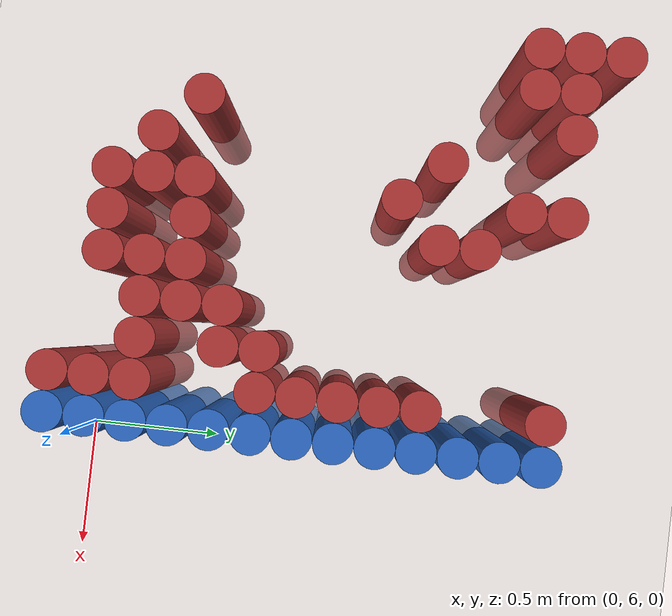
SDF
<sdf version="1.6">
 <world name="default">
  <model name="ground_plane">
   <static>1</static>
   <link name="link">
    <collision name="collision">
     <geometry><plane><normal>0 0 1</normal><size>100 100</size></plane></geometry>
     <surface><friction><ode><mu>100</mu><mu2>50</mu2></ode></friction></surface>
    </collision>
    <visual name="visual">
     <cast_shadows>0</cast_shadows>
     <geometry><plane><normal>0 0 1</normal><size>100 100</size></plane></geometry>
     <material>
      <script><uri>file://media/materials/scripts/gazebo.material</uri><name>Gazebo/Grey</name></script>
     </material>
    </visual>
   </link>
  </model>
  <model name="unit_cylinder_239">
   <static>1</static>
   <pose>-1.575000 7.575000 0.000000 0.000000 0.000000 0.000000</pose>
   <link name="link">
    <inertial>
     <mass>1</mass>
     <inertia><ixx>0.145833</ixx><ixy>0</ixy><ixz>0</ixz><iyy>0.145833</iyy><iyz>0</iyz><izz>0.125</izz></inertia>
    </inertial>
    <collision name="collision">
     <geometry><cylinder><radius>0.075000</radius><length>1</length></cylinder></geometry>
    </collision>
    <visual name="visual">
     <geometry><cylinder><radius>0.075000</radius><length>1</length></cylinder></geometry>
     <material>
      <ambient>0.648000 0.192000 0.192000 1</ambient>
      <diffuse>0.648000 0.192000 0.192000 1</diffuse>
     </material>
     <material>
      <script><name>Gazebo/Grey</name><uri>file://media/materials/scripts/gazebo.material</uri></script>
     </material>
    </visual>
   </link>
  </model>
  <model name="unit_cylinder_240">
   <static>1</static>
   <pose>-1.575000 7.725000 0.000000 0.000000 0.000000 0.000000</pose>
   <link name="link">
    <inertial>
     <mass>1</mass>
     <inertia><ixx>0.145833</ixx><ixy>0</ixy><ixz>0</ixz><iyy>0.145833</iyy><iyz>0</iyz><izz>0.125</izz></inertia>
    </inertial>
    <collision name="collision">
     <geometry><cylinder><radius>0.075000</radius><length>1</length></cylinder></geometry>
    </collision>
    <visual name="visual">
     <geometry><cylinder><radius>0.075000</radius><length>1</length></cylinder></geometry>
     <material>
      <ambient>0.648000 0.192000 0.192000 1</ambient>
      <diffuse>0.648000 0.192000 0.192000 1</diffuse>
     </material>
     <material>
      <script><name>Gazebo/Grey</name><uri>file://media/materials/scripts/gazebo.material</uri></script>
     </material>
    </visual>
   </link>
  </model>
  <model name="unit_cylinder_241">
   <static>1</static>
   <pose>-1.575000 7.875000 0.000000 0.000000 0.000000 0.000000</pose>
   <link name="link">
    <inertial>
     <mass>1</mass>
     <inertia><ixx>0.145833</ixx><ixy>0</ixy><ixz>0</ixz><iyy>0.145833</iyy><iyz>0</iyz><izz>0.125</izz></inertia>
    </inertial>
    <collision name="collision">
     <geometry><cylinder><radius>0.075000</radius><length>1</length></cylinder></geometry>
    </collision>
    <visual name="visual">
     <geometry><cylinder><radius>0.075000</radius><length>1</length></cylinder></geometry>
     <material>
      <ambient>0.648000 0.192000 0.192000 1</ambient>
      <diffuse>0.648000 0.192000 0.192000 1</diffuse>
     </material>
     <material>
      <script><name>Gazebo/Grey</name><uri>file://media/materials/scripts/gazebo.material</uri></script>
     </material>
    </visual>
   </link>
  </model>
  <model name="unit_cylinder_247">
   <static>1</static>
   <pose>-1.425000 7.575000 0.000000 0.000000 0.000000 0.000000</pose>
   <link name="link">
    <inertial>
     <mass>1</mass>
     <inertia><ixx>0.145833</ixx><ixy>0</ixy><ixz>0</ixz><iyy>0.145833</iyy><iyz>0</iyz><izz>0.125</izz></inertia>
    </inertial>
    <collision name="collision">
     <geometry><cylinder><radius>0.075000</radius><length>1</length></cylinder></geometry>
    </collision>
    <visual name="visual">
     <geometry><cylinder><radius>0.075000</radius><length>1</length></cylinder></geometry>
     <material>
      <ambient>0.648000 0.192000 0.192000 1</ambient>
      <diffuse>0.648000 0.192000 0.192000 1</diffuse>
     </material>
     <material>
      <script><name>Gazebo/Grey</name><uri>file://media/materials/scripts/gazebo.material</uri></script>
     </material>
    </visual>
   </link>
  </model>
  <model name="unit_cylinder_248">
   <static>1</static>
   <pose>-1.425000 7.725000 0.000000 0.000000 0.000000 0.000000</pose>
   <link name="link">
    <inertial>
     <mass>1</mass>
     <inertia><ixx>0.145833</ixx><ixy>0</ixy><ixz>0</ixz><iyy>0.145833</iyy><iyz>0</iyz><izz>0.125</izz></inertia>
    </inertial>
    <collision name="collision">
     <geometry><cylinder><radius>0.075000</radius><length>1</length></cylinder></geometry>
    </collision>
    <visual name="visual">
     <geometry><cylinder><radius>0.075000</radius><length>1</length></cylinder></geometry>
     <material>
      <ambient>0.648000 0.192000 0.192000 1</ambient>
      <diffuse>0.648000 0.192000 0.192000 1</diffuse>
     </material>
     <material>
      <script><name>Gazebo/Grey</name><uri>file://media/materials/scripts/gazebo.material</uri></script>
     </material>
    </visual>
   </link>
  </model>
  <model name="unit_cylinder_250">
   <static>1</static>
   <pose>-1.275000 6.375000 0.000000 0.000000 0.000000 0.000000</pose>
   <link name="link">
    <inertial>
     <mass>1</mass>
     <inertia><ixx>0.145833</ixx><ixy>0</ixy><ixz>0</ixz><iyy>0.145833</iyy><iyz>0</iyz><izz>0.125</izz></inertia>
    </inertial>
    <collision name="collision">
     <geometry><cylinder><radius>0.075000</radius><length>1</length></cylinder></geometry>
    </collision>
    <visual name="visual">
     <geometry><cylinder><radius>0.075000</radius><length>1</length></cylinder></geometry>
     <material>
      <ambient>0.648000 0.192000 0.192000 1</ambient>
      <diffuse>0.648000 0.192000 0.192000 1</diffuse>
     </material>
     <material>
      <script><name>Gazebo/Grey</name><uri>file://media/materials/scripts/gazebo.material</uri></script>
     </material>
    </visual>
   </link>
  </model>
  <model name="unit_cylinder_251">
   <static>1</static>
   <pose>-1.275000 7.725000 0.000000 0.000000 0.000000 0.000000</pose>
   <link name="link">
    <inertial>
     <mass>1</mass>
     <inertia><ixx>0.145833</ixx><ixy>0</ixy><ixz>0</ixz><iyy>0.145833</iyy><iyz>0</iyz><izz>0.125</izz></inertia>
    </inertial>
    <collision name="collision">
     <geometry><cylinder><radius>0.075000</radius><length>1</length></cylinder></geometry>
    </collision>
    <visual name="visual">
     <geometry><cylinder><radius>0.075000</radius><length>1</length></cylinder></geometry>
     <material>
      <ambient>0.648000 0.192000 0.192000 1</ambient>
      <diffuse>0.648000 0.192000 0.192000 1</diffuse>
     </material>
     <material>
      <script><name>Gazebo/Grey</name><uri>file://media/materials/scripts/gazebo.material</uri></script>
     </material>
    </visual>
   </link>
  </model>
  <model name="unit_cylinder_252">
   <static>1</static>
   <pose>-1.125000 6.225000 0.000000 0.000000 0.000000 0.000000</pose>
   <link name="link">
    <inertial>
     <mass>1</mass>
     <inertia><ixx>0.145833</ixx><ixy>0</ixy><ixz>0</ixz><iyy>0.145833</iyy><iyz>0</iyz><izz>0.125</izz></inertia>
    </inertial>
    <collision name="collision">
     <geometry><cylinder><radius>0.075000</radius><length>1</length></cylinder></geometry>
    </collision>
    <visual name="visual">
     <geometry><cylinder><radius>0.075000</radius><length>1</length></cylinder></geometry>
     <material>
      <ambient>0.648000 0.192000 0.192000 1</ambient>
      <diffuse>0.648000 0.192000 0.192000 1</diffuse>
     </material>
     <material>
      <script><name>Gazebo/Grey</name><uri>file://media/materials/scripts/gazebo.material</uri></script>
     </material>
    </visual>
   </link>
  </model>
  <model name="unit_cylinder_253">
   <static>1</static>
   <pose>-1.125000 7.275000 0.000000 0.000000 0.000000 0.000000</pose>
   <link name="link">
    <inertial>
     <mass>1</mass>
     <inertia><ixx>0.145833</ixx><ixy>0</ixy><ixz>0</ixz><iyy>0.145833</iyy><iyz>0</iyz><izz>0.125</izz></inertia>
    </inertial>
    <collision name="collision">
     <geometry><cylinder><radius>0.075000</radius><length>1</length></cylinder></geometry>
    </collision>
    <visual name="visual">
     <geometry><cylinder><radius>0.075000</radius><length>1</length></cylinder></geometry>
     <material>
      <ambient>0.648000 0.192000 0.192000 1</ambient>
      <diffuse>0.648000 0.192000 0.192000 1</diffuse>
     </material>
     <material>
      <script><name>Gazebo/Grey</name><uri>file://media/materials/scripts/gazebo.material</uri></script>
     </material>
    </visual>
   </link>
  </model>
  <model name="unit_cylinder_256">
   <static>1</static>
   <pose>-0.975000 6.075000 0.000000 0.000000 0.000000 0.000000</pose>
   <link name="link">
    <inertial>
     <mass>1</mass>
     <inertia><ixx>0.145833</ixx><ixy>0</ixy><ixz>0</ixz><iyy>0.145833</iyy><iyz>0</iyz><izz>0.125</izz></inertia>
    </inertial>
    <collision name="collision">
     <geometry><cylinder><radius>0.075000</radius><length>1</length></cylinder></geometry>
    </collision>
    <visual name="visual">
     <geometry><cylinder><radius>0.075000</radius><length>1</length></cylinder></geometry>
     <material>
      <ambient>0.648000 0.192000 0.192000 1</ambient>
      <diffuse>0.648000 0.192000 0.192000 1</diffuse>
     </material>
     <material>
      <script><name>Gazebo/Grey</name><uri>file://media/materials/scripts/gazebo.material</uri></script>
     </material>
    </visual>
   </link>
  </model>
  <model name="unit_cylinder_257">
   <static>1</static>
   <pose>-0.975000 6.225000 0.000000 0.000000 0.000000 0.000000</pose>
   <link name="link">
    <inertial>
     <mass>1</mass>
     <inertia><ixx>0.145833</ixx><ixy>0</ixy><ixz>0</ixz><iyy>0.145833</iyy><iyz>0</iyz><izz>0.125</izz></inertia>
    </inertial>
    <collision name="collision">
     <geometry><cylinder><radius>0.075000</radius><length>1</length></cylinder></geometry>
    </collision>
    <visual name="visual">
     <geometry><cylinder><radius>0.075000</radius><length>1</length></cylinder></geometry>
     <material>
      <ambient>0.648000 0.192000 0.192000 1</ambient>
      <diffuse>0.648000 0.192000 0.192000 1</diffuse>
     </material>
     <material>
      <script><name>Gazebo/Grey</name><uri>file://media/materials/scripts/gazebo.material</uri></script>
     </material>
    </visual>
   </link>
  </model>
  <model name="unit_cylinder_258">
   <static>1</static>
   <pose>-0.975000 6.375000 0.000000 0.000000 0.000000 0.000000</pose>
   <link name="link">
    <inertial>
     <mass>1</mass>
     <inertia><ixx>0.145833</ixx><ixy>0</ixy><ixz>0</ixz><iyy>0.145833</iyy><iyz>0</iyz><izz>0.125</izz></inertia>
    </inertial>
    <collision name="collision">
     <geometry><cylinder><radius>0.075000</radius><length>1</length></cylinder></geometry>
    </collision>
    <visual name="visual">
     <geometry><cylinder><radius>0.075000</radius><length>1</length></cylinder></geometry>
     <material>
      <ambient>0.648000 0.192000 0.192000 1</ambient>
      <diffuse>0.648000 0.192000 0.192000 1</diffuse>
     </material>
     <material>
      <script><name>Gazebo/Grey</name><uri>file://media/materials/scripts/gazebo.material</uri></script>
     </material>
    </visual>
   </link>
  </model>
  <model name="unit_cylinder_259">
   <static>1</static>
   <pose>-0.975000 7.125000 0.000000 0.000000 0.000000 0.000000</pose>
   <link name="link">
    <inertial>
     <mass>1</mass>
     <inertia><ixx>0.145833</ixx><ixy>0</ixy><ixz>0</ixz><iyy>0.145833</iyy><iyz>0</iyz><izz>0.125</izz></inertia>
    </inertial>
    <collision name="collision">
     <geometry><cylinder><radius>0.075000</radius><length>1</length></cylinder></geometry>
    </collision>
    <visual name="visual">
     <geometry><cylinder><radius>0.075000</radius><length>1</length></cylinder></geometry>
     <material>
      <ambient>0.648000 0.192000 0.192000 1</ambient>
      <diffuse>0.648000 0.192000 0.192000 1</diffuse>
     </material>
     <material>
      <script><name>Gazebo/Grey</name><uri>file://media/materials/scripts/gazebo.material</uri></script>
     </material>
    </visual>
   </link>
  </model>
  <model name="unit_cylinder_260">
   <static>1</static>
   <pose>-0.975000 7.575000 0.000000 0.000000 0.000000 0.000000</pose>
   <link name="link">
    <inertial>
     <mass>1</mass>
     <inertia><ixx>0.145833</ixx><ixy>0</ixy><ixz>0</ixz><iyy>0.145833</iyy><iyz>0</iyz><izz>0.125</izz></inertia>
    </inertial>
    <collision name="collision">
     <geometry><cylinder><radius>0.075000</radius><length>1</length></cylinder></geometry>
    </collision>
    <visual name="visual">
     <geometry><cylinder><radius>0.075000</radius><length>1</length></cylinder></geometry>
     <material>
      <ambient>0.648000 0.192000 0.192000 1</ambient>
      <diffuse>0.648000 0.192000 0.192000 1</diffuse>
     </material>
     <material>
      <script><name>Gazebo/Grey</name><uri>file://media/materials/scripts/gazebo.material</uri></script>
     </material>
    </visual>
   </link>
  </model>
  <model name="unit_cylinder_261">
   <static>1</static>
   <pose>-0.975000 7.725000 0.000000 0.000000 0.000000 0.000000</pose>
   <link name="link">
    <inertial>
     <mass>1</mass>
     <inertia><ixx>0.145833</ixx><ixy>0</ixy><ixz>0</ixz><iyy>0.145833</iyy><iyz>0</iyz><izz>0.125</izz></inertia>
    </inertial>
    <collision name="collision">
     <geometry><cylinder><radius>0.075000</radius><length>1</length></cylinder></geometry>
    </collision>
    <visual name="visual">
     <geometry><cylinder><radius>0.075000</radius><length>1</length></cylinder></geometry>
     <material>
      <ambient>0.648000 0.192000 0.192000 1</ambient>
      <diffuse>0.648000 0.192000 0.192000 1</diffuse>
     </material>
     <material>
      <script><name>Gazebo/Grey</name><uri>file://media/materials/scripts/gazebo.material</uri></script>
     </material>
    </visual>
   </link>
  </model>
  <model name="unit_cylinder_265">
   <static>1</static>
   <pose>-0.825000 6.075000 0.000000 0.000000 0.000000 0.000000</pose>
   <link name="link">
    <inertial>
     <mass>1</mass>
     <inertia><ixx>0.145833</ixx><ixy>0</ixy><ixz>0</ixz><iyy>0.145833</iyy><iyz>0</iyz><izz>0.125</izz></inertia>
    </inertial>
    <collision name="collision">
     <geometry><cylinder><radius>0.075000</radius><length>1</length></cylinder></geometry>
    </collision>
    <visual name="visual">
     <geometry><cylinder><radius>0.075000</radius><length>1</length></cylinder></geometry>
     <material>
      <ambient>0.648000 0.192000 0.192000 1</ambient>
      <diffuse>0.648000 0.192000 0.192000 1</diffuse>
     </material>
     <material>
      <script><name>Gazebo/Grey</name><uri>file://media/materials/scripts/gazebo.material</uri></script>
     </material>
    </visual>
   </link>
  </model>
  <model name="unit_cylinder_266">
   <static>1</static>
   <pose>-0.825000 6.375000 0.000000 0.000000 0.000000 0.000000</pose>
   <link name="link">
    <inertial>
     <mass>1</mass>
     <inertia><ixx>0.145833</ixx><ixy>0</ixy><ixz>0</ixz><iyy>0.145833</iyy><iyz>0</iyz><izz>0.125</izz></inertia>
    </inertial>
    <collision name="collision">
     <geometry><cylinder><radius>0.075000</radius><length>1</length></cylinder></geometry>
    </collision>
    <visual name="visual">
     <geometry><cylinder><radius>0.075000</radius><length>1</length></cylinder></geometry>
     <material>
      <ambient>0.648000 0.192000 0.192000 1</ambient>
      <diffuse>0.648000 0.192000 0.192000 1</diffuse>
     </material>
     <material>
      <script><name>Gazebo/Grey</name><uri>file://media/materials/scripts/gazebo.material</uri></script>
     </material>
    </visual>
   </link>
  </model>
  <model name="unit_cylinder_267">
   <static>1</static>
   <pose>-0.825000 7.275000 0.000000 0.000000 0.000000 0.000000</pose>
   <link name="link">
    <inertial>
     <mass>1</mass>
     <inertia><ixx>0.145833</ixx><ixy>0</ixy><ixz>0</ixz><iyy>0.145833</iyy><iyz>0</iyz><izz>0.125</izz></inertia>
    </inertial>
    <collision name="collision">
     <geometry><cylinder><radius>0.075000</radius><length>1</length></cylinder></geometry>
    </collision>
    <visual name="visual">
     <geometry><cylinder><radius>0.075000</radius><length>1</length></cylinder></geometry>
     <material>
      <ambient>0.648000 0.192000 0.192000 1</ambient>
      <diffuse>0.648000 0.192000 0.192000 1</diffuse>
     </material>
     <material>
      <script><name>Gazebo/Grey</name><uri>file://media/materials/scripts/gazebo.material</uri></script>
     </material>
    </visual>
   </link>
  </model>
  <model name="unit_cylinder_268">
   <static>1</static>
   <pose>-0.825000 7.425000 0.000000 0.000000 0.000000 0.000000</pose>
   <link name="link">
    <inertial>
     <mass>1</mass>
     <inertia><ixx>0.145833</ixx><ixy>0</ixy><ixz>0</ixz><iyy>0.145833</iyy><iyz>0</iyz><izz>0.125</izz></inertia>
    </inertial>
    <collision name="collision">
     <geometry><cylinder><radius>0.075000</radius><length>1</length></cylinder></geometry>
    </collision>
    <visual name="visual">
     <geometry><cylinder><radius>0.075000</radius><length>1</length></cylinder></geometry>
     <material>
      <ambient>0.648000 0.192000 0.192000 1</ambient>
      <diffuse>0.648000 0.192000 0.192000 1</diffuse>
     </material>
     <material>
      <script><name>Gazebo/Grey</name><uri>file://media/materials/scripts/gazebo.material</uri></script>
     </material>
    </visual>
   </link>
  </model>
  <model name="unit_cylinder_272">
   <static>1</static>
   <pose>-0.675000 6.075000 0.000000 0.000000 0.000000 0.000000</pose>
   <link name="link">
    <inertial>
     <mass>1</mass>
     <inertia><ixx>0.145833</ixx><ixy>0</ixy><ixz>0</ixz><iyy>0.145833</iyy><iyz>0</iyz><izz>0.125</izz></inertia>
    </inertial>
    <collision name="collision">
     <geometry><cylinder><radius>0.075000</radius><length>1</length></cylinder></geometry>
    </collision>
    <visual name="visual">
     <geometry><cylinder><radius>0.075000</radius><length>1</length></cylinder></geometry>
     <material>
      <ambient>0.648000 0.192000 0.192000 1</ambient>
      <diffuse>0.648000 0.192000 0.192000 1</diffuse>
     </material>
     <material>
      <script><name>Gazebo/Grey</name><uri>file://media/materials/scripts/gazebo.material</uri></script>
     </material>
    </visual>
   </link>
  </model>
  <model name="unit_cylinder_273">
   <static>1</static>
   <pose>-0.675000 6.225000 0.000000 0.000000 0.000000 0.000000</pose>
   <link name="link">
    <inertial>
     <mass>1</mass>
     <inertia><ixx>0.145833</ixx><ixy>0</ixy><ixz>0</ixz><iyy>0.145833</iyy><iyz>0</iyz><izz>0.125</izz></inertia>
    </inertial>
    <collision name="collision">
     <geometry><cylinder><radius>0.075000</radius><length>1</length></cylinder></geometry>
    </collision>
    <visual name="visual">
     <geometry><cylinder><radius>0.075000</radius><length>1</length></cylinder></geometry>
     <material>
      <ambient>0.648000 0.192000 0.192000 1</ambient>
      <diffuse>0.648000 0.192000 0.192000 1</diffuse>
     </material>
     <material>
      <script><name>Gazebo/Grey</name><uri>file://media/materials/scripts/gazebo.material</uri></script>
     </material>
    </visual>
   </link>
  </model>
  <model name="unit_cylinder_274">
   <static>1</static>
   <pose>-0.675000 6.375000 0.000000 0.000000 0.000000 0.000000</pose>
   <link name="link">
    <inertial>
     <mass>1</mass>
     <inertia><ixx>0.145833</ixx><ixy>0</ixy><ixz>0</ixz><iyy>0.145833</iyy><iyz>0</iyz><izz>0.125</izz></inertia>
    </inertial>
    <collision name="collision">
     <geometry><cylinder><radius>0.075000</radius><length>1</length></cylinder></geometry>
    </collision>
    <visual name="visual">
     <geometry><cylinder><radius>0.075000</radius><length>1</length></cylinder></geometry>
     <material>
      <ambient>0.648000 0.192000 0.192000 1</ambient>
      <diffuse>0.648000 0.192000 0.192000 1</diffuse>
     </material>
     <material>
      <script><name>Gazebo/Grey</name><uri>file://media/materials/scripts/gazebo.material</uri></script>
     </material>
    </visual>
   </link>
  </model>
  <model name="unit_cylinder_279">
   <static>1</static>
   <pose>-0.525000 6.225000 0.000000 0.000000 0.000000 0.000000</pose>
   <link name="link">
    <inertial>
     <mass>1</mass>
     <inertia><ixx>0.145833</ixx><ixy>0</ixy><ixz>0</ixz><iyy>0.145833</iyy><iyz>0</iyz><izz>0.125</izz></inertia>
    </inertial>
    <collision name="collision">
     <geometry><cylinder><radius>0.075000</radius><length>1</length></cylinder></geometry>
    </collision>
    <visual name="visual">
     <geometry><cylinder><radius>0.075000</radius><length>1</length></cylinder></geometry>
     <material>
      <ambient>0.648000 0.192000 0.192000 1</ambient>
      <diffuse>0.648000 0.192000 0.192000 1</diffuse>
     </material>
     <material>
      <script><name>Gazebo/Grey</name><uri>file://media/materials/scripts/gazebo.material</uri></script>
     </material>
    </visual>
   </link>
  </model>
  <model name="unit_cylinder_280">
   <static>1</static>
   <pose>-0.525000 6.375000 0.000000 0.000000 0.000000 0.000000</pose>
   <link name="link">
    <inertial>
     <mass>1</mass>
     <inertia><ixx>0.145833</ixx><ixy>0</ixy><ixz>0</ixz><iyy>0.145833</iyy><iyz>0</iyz><izz>0.125</izz></inertia>
    </inertial>
    <collision name="collision">
     <geometry><cylinder><radius>0.075000</radius><length>1</length></cylinder></geometry>
    </collision>
    <visual name="visual">
     <geometry><cylinder><radius>0.075000</radius><length>1</length></cylinder></geometry>
     <material>
      <ambient>0.648000 0.192000 0.192000 1</ambient>
      <diffuse>0.648000 0.192000 0.192000 1</diffuse>
     </material>
     <material>
      <script><name>Gazebo/Grey</name><uri>file://media/materials/scripts/gazebo.material</uri></script>
     </material>
    </visual>
   </link>
  </model>
  <model name="unit_cylinder_281">
   <static>1</static>
   <pose>-0.525000 6.525000 0.000000 0.000000 0.000000 0.000000</pose>
   <link name="link">
    <inertial>
     <mass>1</mass>
     <inertia><ixx>0.145833</ixx><ixy>0</ixy><ixz>0</ixz><iyy>0.145833</iyy><iyz>0</iyz><izz>0.125</izz></inertia>
    </inertial>
    <collision name="collision">
     <geometry><cylinder><radius>0.075000</radius><length>1</length></cylinder></geometry>
    </collision>
    <visual name="visual">
     <geometry><cylinder><radius>0.075000</radius><length>1</length></cylinder></geometry>
     <material>
      <ambient>0.648000 0.192000 0.192000 1</ambient>
      <diffuse>0.648000 0.192000 0.192000 1</diffuse>
     </material>
     <material>
      <script><name>Gazebo/Grey</name><uri>file://media/materials/scripts/gazebo.material</uri></script>
     </material>
    </visual>
   </link>
  </model>
  <model name="unit_cylinder_291">
   <static>1</static>
   <pose>-0.375000 6.225000 0.000000 0.000000 0.000000 0.000000</pose>
   <link name="link">
    <inertial>
     <mass>1</mass>
     <inertia><ixx>0.145833</ixx><ixy>0</ixy><ixz>0</ixz><iyy>0.145833</iyy><iyz>0</iyz><izz>0.125</izz></inertia>
    </inertial>
    <collision name="collision">
     <geometry><cylinder><radius>0.075000</radius><length>1</length></cylinder></geometry>
    </collision>
    <visual name="visual">
     <geometry><cylinder><radius>0.075000</radius><length>1</length></cylinder></geometry>
     <material>
      <ambient>0.648000 0.192000 0.192000 1</ambient>
      <diffuse>0.648000 0.192000 0.192000 1</diffuse>
     </material>
     <material>
      <script><name>Gazebo/Grey</name><uri>file://media/materials/scripts/gazebo.material</uri></script>
     </material>
    </visual>
   </link>
  </model>
  <model name="unit_cylinder_292">
   <static>1</static>
   <pose>-0.375000 6.525000 0.000000 0.000000 0.000000 0.000000</pose>
   <link name="link">
    <inertial>
     <mass>1</mass>
     <inertia><ixx>0.145833</ixx><ixy>0</ixy><ixz>0</ixz><iyy>0.145833</iyy><iyz>0</iyz><izz>0.125</izz></inertia>
    </inertial>
    <collision name="collision">
     <geometry><cylinder><radius>0.075000</radius><length>1</length></cylinder></geometry>
    </collision>
    <visual name="visual">
     <geometry><cylinder><radius>0.075000</radius><length>1</length></cylinder></geometry>
     <material>
      <ambient>0.648000 0.192000 0.192000 1</ambient>
      <diffuse>0.648000 0.192000 0.192000 1</diffuse>
     </material>
     <material>
      <script><name>Gazebo/Grey</name><uri>file://media/materials/scripts/gazebo.material</uri></script>
     </material>
    </visual>
   </link>
  </model>
  <model name="unit_cylinder_293">
   <static>1</static>
   <pose>-0.375000 6.675000 0.000000 0.000000 0.000000 0.000000</pose>
   <link name="link">
    <inertial>
     <mass>1</mass>
     <inertia><ixx>0.145833</ixx><ixy>0</ixy><ixz>0</ixz><iyy>0.145833</iyy><iyz>0</iyz><izz>0.125</izz></inertia>
    </inertial>
    <collision name="collision">
     <geometry><cylinder><radius>0.075000</radius><length>1</length></cylinder></geometry>
    </collision>
    <visual name="visual">
     <geometry><cylinder><radius>0.075000</radius><length>1</length></cylinder></geometry>
     <material>
      <ambient>0.648000 0.192000 0.192000 1</ambient>
      <diffuse>0.648000 0.192000 0.192000 1</diffuse>
     </material>
     <material>
      <script><name>Gazebo/Grey</name><uri>file://media/materials/scripts/gazebo.material</uri></script>
     </material>
    </visual>
   </link>
  </model>
  <model name="unit_cylinder_306">
   <static>1</static>
   <pose>-0.225000 5.925000 0.000000 0.000000 0.000000 0.000000</pose>
   <link name="link">
    <inertial>
     <mass>1</mass>
     <inertia><ixx>0.145833</ixx><ixy>0</ixy><ixz>0</ixz><iyy>0.145833</iyy><iyz>0</iyz><izz>0.125</izz></inertia>
    </inertial>
    <collision name="collision">
     <geometry><cylinder><radius>0.075000</radius><length>1</length></cylinder></geometry>
    </collision>
    <visual name="visual">
     <geometry><cylinder><radius>0.075000</radius><length>1</length></cylinder></geometry>
     <material>
      <ambient>0.648000 0.192000 0.192000 1</ambient>
      <diffuse>0.648000 0.192000 0.192000 1</diffuse>
     </material>
     <material>
      <script><name>Gazebo/Grey</name><uri>file://media/materials/scripts/gazebo.material</uri></script>
     </material>
    </visual>
   </link>
  </model>
  <model name="unit_cylinder_307">
   <static>1</static>
   <pose>-0.225000 6.075000 0.000000 0.000000 0.000000 0.000000</pose>
   <link name="link">
    <inertial>
     <mass>1</mass>
     <inertia><ixx>0.145833</ixx><ixy>0</ixy><ixz>0</ixz><iyy>0.145833</iyy><iyz>0</iyz><izz>0.125</izz></inertia>
    </inertial>
    <collision name="collision">
     <geometry><cylinder><radius>0.075000</radius><length>1</length></cylinder></geometry>
    </collision>
    <visual name="visual">
     <geometry><cylinder><radius>0.075000</radius><length>1</length></cylinder></geometry>
     <material>
      <ambient>0.648000 0.192000 0.192000 1</ambient>
      <diffuse>0.648000 0.192000 0.192000 1</diffuse>
     </material>
     <material>
      <script><name>Gazebo/Grey</name><uri>file://media/materials/scripts/gazebo.material</uri></script>
     </material>
    </visual>
   </link>
  </model>
  <model name="unit_cylinder_308">
   <static>1</static>
   <pose>-0.225000 6.225000 0.000000 0.000000 0.000000 0.000000</pose>
   <link name="link">
    <inertial>
     <mass>1</mass>
     <inertia><ixx>0.145833</ixx><ixy>0</ixy><ixz>0</ixz><iyy>0.145833</iyy><iyz>0</iyz><izz>0.125</izz></inertia>
    </inertial>
    <collision name="collision">
     <geometry><cylinder><radius>0.075000</radius><length>1</length></cylinder></geometry>
    </collision>
    <visual name="visual">
     <geometry><cylinder><radius>0.075000</radius><length>1</length></cylinder></geometry>
     <material>
      <ambient>0.648000 0.192000 0.192000 1</ambient>
      <diffuse>0.648000 0.192000 0.192000 1</diffuse>
     </material>
     <material>
      <script><name>Gazebo/Grey</name><uri>file://media/materials/scripts/gazebo.material</uri></script>
     </material>
    </visual>
   </link>
  </model>
  <model name="unit_cylinder_309">
   <static>1</static>
   <pose>-0.225000 6.675000 0.000000 0.000000 0.000000 0.000000</pose>
   <link name="link">
    <inertial>
     <mass>1</mass>
     <inertia><ixx>0.145833</ixx><ixy>0</ixy><ixz>0</ixz><iyy>0.145833</iyy><iyz>0</iyz><izz>0.125</izz></inertia>
    </inertial>
    <collision name="collision">
     <geometry><cylinder><radius>0.075000</radius><length>1</length></cylinder></geometry>
    </collision>
    <visual name="visual">
     <geometry><cylinder><radius>0.075000</radius><length>1</length></cylinder></geometry>
     <material>
      <ambient>0.648000 0.192000 0.192000 1</ambient>
      <diffuse>0.648000 0.192000 0.192000 1</diffuse>
     </material>
     <material>
      <script><name>Gazebo/Grey</name><uri>file://media/materials/scripts/gazebo.material</uri></script>
     </material>
    </visual>
   </link>
  </model>
  <model name="unit_cylinder_310">
   <static>1</static>
   <pose>-0.225000 6.825000 0.000000 0.000000 0.000000 0.000000</pose>
   <link name="link">
    <inertial>
     <mass>1</mass>
     <inertia><ixx>0.145833</ixx><ixy>0</ixy><ixz>0</ixz><iyy>0.145833</iyy><iyz>0</iyz><izz>0.125</izz></inertia>
    </inertial>
    <collision name="collision">
     <geometry><cylinder><radius>0.075000</radius><length>1</length></cylinder></geometry>
    </collision>
    <visual name="visual">
     <geometry><cylinder><radius>0.075000</radius><length>1</length></cylinder></geometry>
     <material>
      <ambient>0.648000 0.192000 0.192000 1</ambient>
      <diffuse>0.648000 0.192000 0.192000 1</diffuse>
     </material>
     <material>
      <script><name>Gazebo/Grey</name><uri>file://media/materials/scripts/gazebo.material</uri></script>
     </material>
    </visual>
   </link>
  </model>
  <model name="unit_cylinder_311">
   <static>1</static>
   <pose>-0.225000 6.975000 0.000000 0.000000 0.000000 0.000000</pose>
   <link name="link">
    <inertial>
     <mass>1</mass>
     <inertia><ixx>0.145833</ixx><ixy>0</ixy><ixz>0</ixz><iyy>0.145833</iyy><iyz>0</iyz><izz>0.125</izz></inertia>
    </inertial>
    <collision name="collision">
     <geometry><cylinder><radius>0.075000</radius><length>1</length></cylinder></geometry>
    </collision>
    <visual name="visual">
     <geometry><cylinder><radius>0.075000</radius><length>1</length></cylinder></geometry>
     <material>
      <ambient>0.648000 0.192000 0.192000 1</ambient>
      <diffuse>0.648000 0.192000 0.192000 1</diffuse>
     </material>
     <material>
      <script><name>Gazebo/Grey</name><uri>file://media/materials/scripts/gazebo.material</uri></script>
     </material>
    </visual>
   </link>
  </model>
  <model name="unit_cylinder_312">
   <static>1</static>
   <pose>-0.225000 7.125000 0.000000 0.000000 0.000000 0.000000</pose>
   <link name="link">
    <inertial>
     <mass>1</mass>
     <inertia><ixx>0.145833</ixx><ixy>0</ixy><ixz>0</ixz><iyy>0.145833</iyy><iyz>0</iyz><izz>0.125</izz></inertia>
    </inertial>
    <collision name="collision">
     <geometry><cylinder><radius>0.075000</radius><length>1</length></cylinder></geometry>
    </collision>
    <visual name="visual">
     <geometry><cylinder><radius>0.075000</radius><length>1</length></cylinder></geometry>
     <material>
      <ambient>0.648000 0.192000 0.192000 1</ambient>
      <diffuse>0.648000 0.192000 0.192000 1</diffuse>
     </material>
     <material>
      <script><name>Gazebo/Grey</name><uri>file://media/materials/scripts/gazebo.material</uri></script>
     </material>
    </visual>
   </link>
  </model>
  <model name="unit_cylinder_313">
   <static>1</static>
   <pose>-0.225000 7.275000 0.000000 0.000000 0.000000 0.000000</pose>
   <link name="link">
    <inertial>
     <mass>1</mass>
     <inertia><ixx>0.145833</ixx><ixy>0</ixy><ixz>0</ixz><iyy>0.145833</iyy><iyz>0</iyz><izz>0.125</izz></inertia>
    </inertial>
    <collision name="collision">
     <geometry><cylinder><radius>0.075000</radius><length>1</length></cylinder></geometry>
    </collision>
    <visual name="visual">
     <geometry><cylinder><radius>0.075000</radius><length>1</length></cylinder></geometry>
     <material>
      <ambient>0.648000 0.192000 0.192000 1</ambient>
      <diffuse>0.648000 0.192000 0.192000 1</diffuse>
     </material>
     <material>
      <script><name>Gazebo/Grey</name><uri>file://media/materials/scripts/gazebo.material</uri></script>
     </material>
    </visual>
   </link>
  </model>
  <model name="unit_cylinder_314">
   <static>1</static>
   <pose>-0.225000 7.725000 0.000000 0.000000 0.000000 0.000000</pose>
   <link name="link">
    <inertial>
     <mass>1</mass>
     <inertia><ixx>0.145833</ixx><ixy>0</ixy><ixz>0</ixz><iyy>0.145833</iyy><iyz>0</iyz><izz>0.125</izz></inertia>
    </inertial>
    <collision name="collision">
     <geometry><cylinder><radius>0.075000</radius><length>1</length></cylinder></geometry>
    </collision>
    <visual name="visual">
     <geometry><cylinder><radius>0.075000</radius><length>1</length></cylinder></geometry>
     <material>
      <ambient>0.648000 0.192000 0.192000 1</ambient>
      <diffuse>0.648000 0.192000 0.192000 1</diffuse>
     </material>
     <material>
      <script><name>Gazebo/Grey</name><uri>file://media/materials/scripts/gazebo.material</uri></script>
     </material>
    </visual>
   </link>
  </model>
  <model name="unit_cylinder_326">
   <static>1</static>
   <pose>-0.075000 5.925000 0.000000 0.000000 0.000000 0.000000</pose>
   <link name="link">
    <inertial>
     <mass>1</mass>
     <inertia><ixx>0.145833</ixx><ixy>0</ixy><ixz>0</ixz><iyy>0.145833</iyy><iyz>0</iyz><izz>0.125</izz></inertia>
    </inertial>
    <collision name="collision">
     <geometry><cylinder><radius>0.075000</radius><length>1</length></cylinder></geometry>
    </collision>
    <visual name="visual">
     <geometry><cylinder><radius>0.075000</radius><length>1</length></cylinder></geometry>
     <material>
      <ambient>0.152000 0.379000 0.720000 1</ambient>
      <diffuse>0.152000 0.379000 0.720000 1</diffuse>
     </material>
     <material>
      <script><name>Gazebo/Grey</name><uri>file://media/materials/scripts/gazebo.material</uri></script>
     </material>
    </visual>
   </link>
  </model>
  <model name="unit_cylinder_327">
   <static>1</static>
   <pose>-0.075000 6.075000 0.000000 0.000000 0.000000 0.000000</pose>
   <link name="link">
    <inertial>
     <mass>1</mass>
     <inertia><ixx>0.145833</ixx><ixy>0</ixy><ixz>0</ixz><iyy>0.145833</iyy><iyz>0</iyz><izz>0.125</izz></inertia>
    </inertial>
    <collision name="collision">
     <geometry><cylinder><radius>0.075000</radius><length>1</length></cylinder></geometry>
    </collision>
    <visual name="visual">
     <geometry><cylinder><radius>0.075000</radius><length>1</length></cylinder></geometry>
     <material>
      <ambient>0.152000 0.379000 0.720000 1</ambient>
      <diffuse>0.152000 0.379000 0.720000 1</diffuse>
     </material>
     <material>
      <script><name>Gazebo/Grey</name><uri>file://media/materials/scripts/gazebo.material</uri></script>
     </material>
    </visual>
   </link>
  </model>
  <model name="unit_cylinder_328">
   <static>1</static>
   <pose>-0.075000 6.225000 0.000000 0.000000 0.000000 0.000000</pose>
   <link name="link">
    <inertial>
     <mass>1</mass>
     <inertia><ixx>0.145833</ixx><ixy>0</ixy><ixz>0</ixz><iyy>0.145833</iyy><iyz>0</iyz><izz>0.125</izz></inertia>
    </inertial>
    <collision name="collision">
     <geometry><cylinder><radius>0.075000</radius><length>1</length></cylinder></geometry>
    </collision>
    <visual name="visual">
     <geometry><cylinder><radius>0.075000</radius><length>1</length></cylinder></geometry>
     <material>
      <ambient>0.152000 0.379000 0.720000 1</ambient>
      <diffuse>0.152000 0.379000 0.720000 1</diffuse>
     </material>
     <material>
      <script><name>Gazebo/Grey</name><uri>file://media/materials/scripts/gazebo.material</uri></script>
     </material>
    </visual>
   </link>
  </model>
  <model name="unit_cylinder_329">
   <static>1</static>
   <pose>-0.075000 6.375000 0.000000 0.000000 0.000000 0.000000</pose>
   <link name="link">
    <inertial>
     <mass>1</mass>
     <inertia><ixx>0.145833</ixx><ixy>0</ixy><ixz>0</ixz><iyy>0.145833</iyy><iyz>0</iyz><izz>0.125</izz></inertia>
    </inertial>
    <collision name="collision">
     <geometry><cylinder><radius>0.075000</radius><length>1</length></cylinder></geometry>
    </collision>
    <visual name="visual">
     <geometry><cylinder><radius>0.075000</radius><length>1</length></cylinder></geometry>
     <material>
      <ambient>0.152000 0.379000 0.720000 1</ambient>
      <diffuse>0.152000 0.379000 0.720000 1</diffuse>
     </material>
     <material>
      <script><name>Gazebo/Grey</name><uri>file://media/materials/scripts/gazebo.material</uri></script>
     </material>
    </visual>
   </link>
  </model>
  <model name="unit_cylinder_330">
   <static>1</static>
   <pose>-0.075000 6.525000 0.000000 0.000000 0.000000 0.000000</pose>
   <link name="link">
    <inertial>
     <mass>1</mass>
     <inertia><ixx>0.145833</ixx><ixy>0</ixy><ixz>0</ixz><iyy>0.145833</iyy><iyz>0</iyz><izz>0.125</izz></inertia>
    </inertial>
    <collision name="collision">
     <geometry><cylinder><radius>0.075000</radius><length>1</length></cylinder></geometry>
    </collision>
    <visual name="visual">
     <geometry><cylinder><radius>0.075000</radius><length>1</length></cylinder></geometry>
     <material>
      <ambient>0.152000 0.379000 0.720000 1</ambient>
      <diffuse>0.152000 0.379000 0.720000 1</diffuse>
     </material>
     <material>
      <script><name>Gazebo/Grey</name><uri>file://media/materials/scripts/gazebo.material</uri></script>
     </material>
    </visual>
   </link>
  </model>
  <model name="unit_cylinder_331">
   <static>1</static>
   <pose>-0.075000 6.675000 0.000000 0.000000 0.000000 0.000000</pose>
   <link name="link">
    <inertial>
     <mass>1</mass>
     <inertia><ixx>0.145833</ixx><ixy>0</ixy><ixz>0</ixz><iyy>0.145833</iyy><iyz>0</iyz><izz>0.125</izz></inertia>
    </inertial>
    <collision name="collision">
     <geometry><cylinder><radius>0.075000</radius><length>1</length></cylinder></geometry>
    </collision>
    <visual name="visual">
     <geometry><cylinder><radius>0.075000</radius><length>1</length></cylinder></geometry>
     <material>
      <ambient>0.152000 0.379000 0.720000 1</ambient>
      <diffuse>0.152000 0.379000 0.720000 1</diffuse>
     </material>
     <material>
      <script><name>Gazebo/Grey</name><uri>file://media/materials/scripts/gazebo.material</uri></script>
     </material>
    </visual>
   </link>
  </model>
  <model name="unit_cylinder_332">
   <static>1</static>
   <pose>-0.075000 6.825000 0.000000 0.000000 0.000000 0.000000</pose>
   <link name="link">
    <inertial>
     <mass>1</mass>
     <inertia><ixx>0.145833</ixx><ixy>0</ixy><ixz>0</ixz><iyy>0.145833</iyy><iyz>0</iyz><izz>0.125</izz></inertia>
    </inertial>
    <collision name="collision">
     <geometry><cylinder><radius>0.075000</radius><length>1</length></cylinder></geometry>
    </collision>
    <visual name="visual">
     <geometry><cylinder><radius>0.075000</radius><length>1</length></cylinder></geometry>
     <material>
      <ambient>0.152000 0.379000 0.720000 1</ambient>
      <diffuse>0.152000 0.379000 0.720000 1</diffuse>
     </material>
     <material>
      <script><name>Gazebo/Grey</name><uri>file://media/materials/scripts/gazebo.material</uri></script>
     </material>
    </visual>
   </link>
  </model>
  <model name="unit_cylinder_333">
   <static>1</static>
   <pose>-0.075000 6.975000 0.000000 0.000000 0.000000 0.000000</pose>
   <link name="link">
    <inertial>
     <mass>1</mass>
     <inertia><ixx>0.145833</ixx><ixy>0</ixy><ixz>0</ixz><iyy>0.145833</iyy><iyz>0</iyz><izz>0.125</izz></inertia>
    </inertial>
    <collision name="collision">
     <geometry><cylinder><radius>0.075000</radius><length>1</length></cylinder></geometry>
    </collision>
    <visual name="visual">
     <geometry><cylinder><radius>0.075000</radius><length>1</length></cylinder></geometry>
     <material>
      <ambient>0.152000 0.379000 0.720000 1</ambient>
      <diffuse>0.152000 0.379000 0.720000 1</diffuse>
     </material>
     <material>
      <script><name>Gazebo/Grey</name><uri>file://media/materials/scripts/gazebo.material</uri></script>
     </material>
    </visual>
   </link>
  </model>
  <model name="unit_cylinder_334">
   <static>1</static>
   <pose>-0.075000 7.125000 0.000000 0.000000 0.000000 0.000000</pose>
   <link name="link">
    <inertial>
     <mass>1</mass>
     <inertia><ixx>0.145833</ixx><ixy>0</ixy><ixz>0</ixz><iyy>0.145833</iyy><iyz>0</iyz><izz>0.125</izz></inertia>
    </inertial>
    <collision name="collision">
     <geometry><cylinder><radius>0.075000</radius><length>1</length></cylinder></geometry>
    </collision>
    <visual name="visual">
     <geometry><cylinder><radius>0.075000</radius><length>1</length></cylinder></geometry>
     <material>
      <ambient>0.152000 0.379000 0.720000 1</ambient>
      <diffuse>0.152000 0.379000 0.720000 1</diffuse>
     </material>
     <material>
      <script><name>Gazebo/Grey</name><uri>file://media/materials/scripts/gazebo.material</uri></script>
     </material>
    </visual>
   </link>
  </model>
  <model name="unit_cylinder_335">
   <static>1</static>
   <pose>-0.075000 7.275000 0.000000 0.000000 0.000000 0.000000</pose>
   <link name="link">
    <inertial>
     <mass>1</mass>
     <inertia><ixx>0.145833</ixx><ixy>0</ixy><ixz>0</ixz><iyy>0.145833</iyy><iyz>0</iyz><izz>0.125</izz></inertia>
    </inertial>
    <collision name="collision">
     <geometry><cylinder><radius>0.075000</radius><length>1</length></cylinder></geometry>
    </collision>
    <visual name="visual">
     <geometry><cylinder><radius>0.075000</radius><length>1</length></cylinder></geometry>
     <material>
      <ambient>0.152000 0.379000 0.720000 1</ambient>
      <diffuse>0.152000 0.379000 0.720000 1</diffuse>
     </material>
     <material>
      <script><name>Gazebo/Grey</name><uri>file://media/materials/scripts/gazebo.material</uri></script>
     </material>
    </visual>
   </link>
  </model>
  <model name="unit_cylinder_336">
   <static>1</static>
   <pose>-0.075000 7.425000 0.000000 0.000000 0.000000 0.000000</pose>
   <link name="link">
    <inertial>
     <mass>1</mass>
     <inertia><ixx>0.145833</ixx><ixy>0</ixy><ixz>0</ixz><iyy>0.145833</iyy><iyz>0</iyz><izz>0.125</izz></inertia>
    </inertial>
    <collision name="collision">
     <geometry><cylinder><radius>0.075000</radius><length>1</length></cylinder></geometry>
    </collision>
    <visual name="visual">
     <geometry><cylinder><radius>0.075000</radius><length>1</length></cylinder></geometry>
     <material>
      <ambient>0.152000 0.379000 0.720000 1</ambient>
      <diffuse>0.152000 0.379000 0.720000 1</diffuse>
     </material>
     <material>
      <script><name>Gazebo/Grey</name><uri>file://media/materials/scripts/gazebo.material</uri></script>
     </material>
    </visual>
   </link>
  </model>
  <model name="unit_cylinder_337">
   <static>1</static>
   <pose>-0.075000 7.575000 0.000000 0.000000 0.000000 0.000000</pose>
   <link name="link">
    <inertial>
     <mass>1</mass>
     <inertia><ixx>0.145833</ixx><ixy>0</ixy><ixz>0</ixz><iyy>0.145833</iyy><iyz>0</iyz><izz>0.125</izz></inertia>
    </inertial>
    <collision name="collision">
     <geometry><cylinder><radius>0.075000</radius><length>1</length></cylinder></geometry>
    </collision>
    <visual name="visual">
     <geometry><cylinder><radius>0.075000</radius><length>1</length></cylinder></geometry>
     <material>
      <ambient>0.152000 0.379000 0.720000 1</ambient>
      <diffuse>0.152000 0.379000 0.720000 1</diffuse>
     </material>
     <material>
      <script><name>Gazebo/Grey</name><uri>file://media/materials/scripts/gazebo.material</uri></script>
     </material>
    </visual>
   </link>
  </model>
  <model name="unit_cylinder_338">
   <static>1</static>
   <pose>-0.075000 7.725000 0.000000 0.000000 0.000000 0.000000</pose>
   <link name="link">
    <inertial>
     <mass>1</mass>
     <inertia><ixx>0.145833</ixx><ixy>0</ixy><ixz>0</ixz><iyy>0.145833</iyy><iyz>0</iyz><izz>0.125</izz></inertia>
    </inertial>
    <collision name="collision">
     <geometry><cylinder><radius>0.075000</radius><length>1</length></cylinder></geometry>
    </collision>
    <visual name="visual">
     <geometry><cylinder><radius>0.075000</radius><length>1</length></cylinder></geometry>
     <material>
      <ambient>0.152000 0.379000 0.720000 1</ambient>
      <diffuse>0.152000 0.379000 0.720000 1</diffuse>
     </material>
     <material>
      <script><name>Gazebo/Grey</name><uri>file://media/materials/scripts/gazebo.material</uri></script>
     </material>
    </visual>
   </link>
  </model>
 </world>
</sdf>
